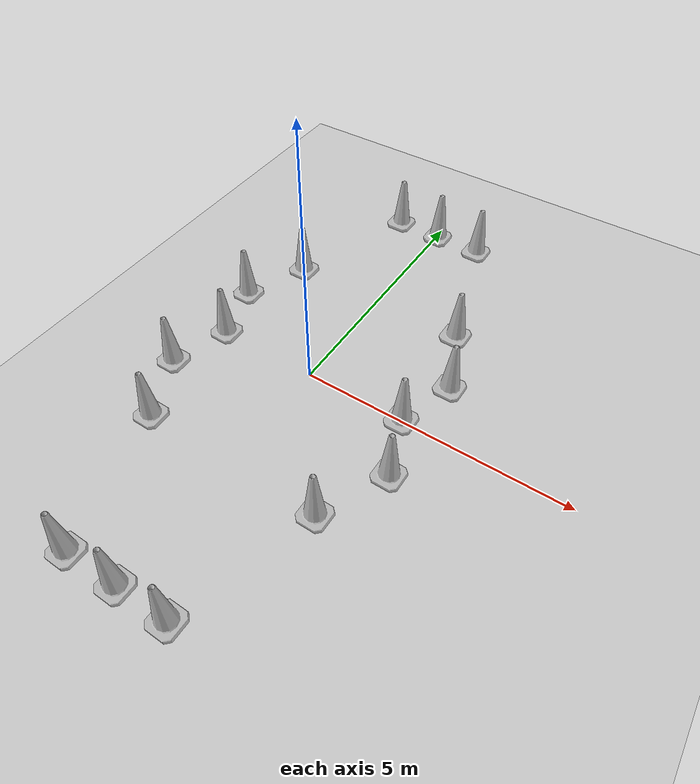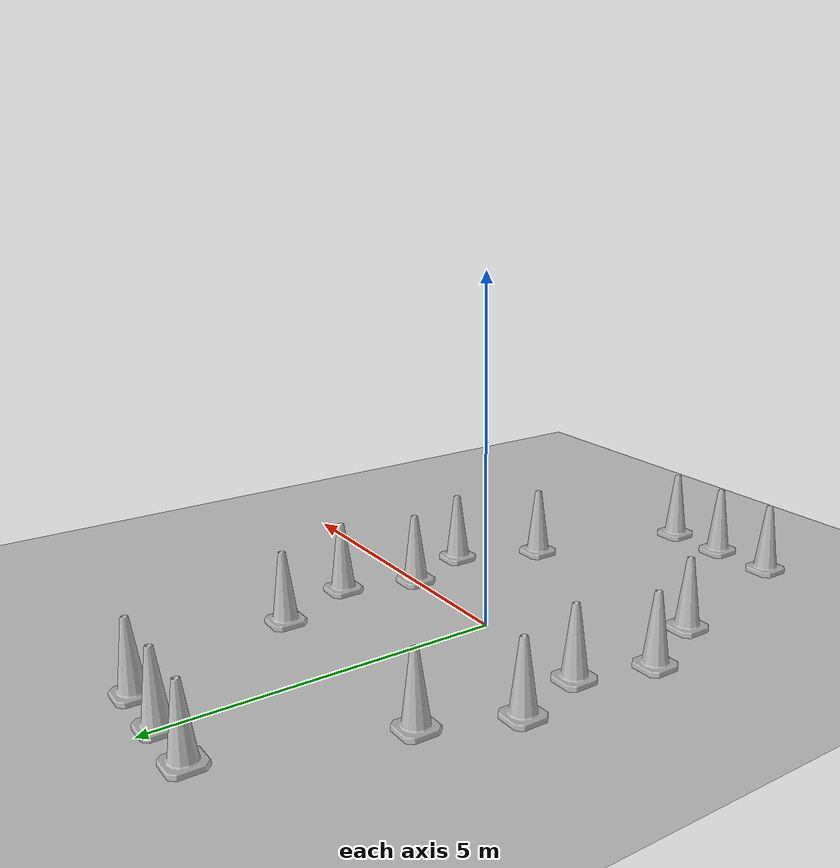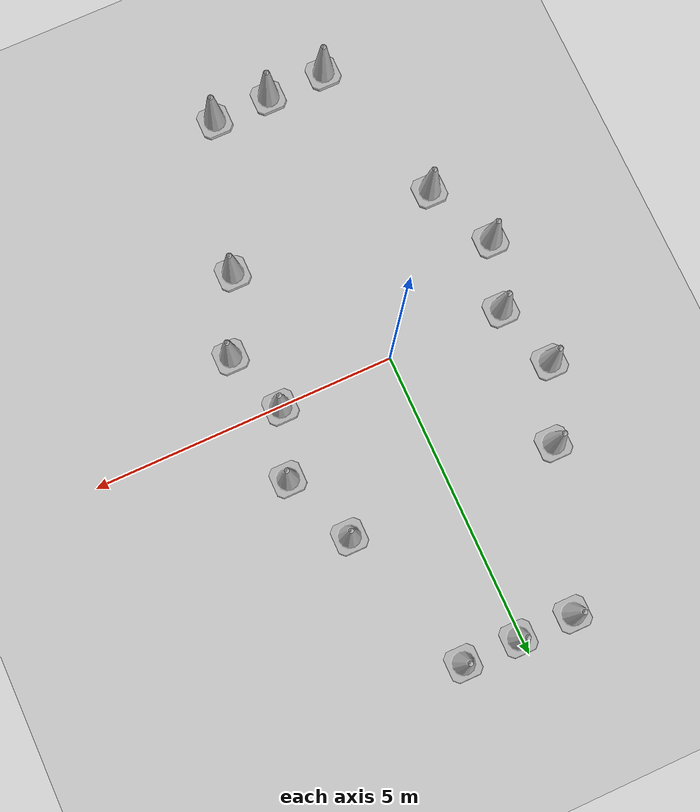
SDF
<sdf version="1.7">
 <world name="default">
  <light name="sun" type="directional">
   <pose>0 0 10 0 -0 0</pose>
   <diffuse>0.8 0.8 0.8 1</diffuse>
   <specular>0.2 0.2 0.2 1</specular>
   <attenuation>
    <range>1000</range>
    <constant>0.9</constant>
    <linear>0.01</linear>
    <quadratic>0.001</quadratic>
   </attenuation>
   <direction>-0.5 0.1 -0.9</direction>
   <spot><inner_angle>0</inner_angle><outer_angle>0</outer_angle><falloff>0</falloff></spot>
  </light>
  <model name="ground_plane">
   <static>1</static>
   <link name="link">
    <collision name="collision">
     <geometry><plane><normal>0 0 1</normal><size>100 100</size></plane></geometry>
     <surface>
      <contact><collide_bitmask>65535</collide_bitmask></contact>
      <friction><ode><mu>100</mu><mu2>50</mu2></ode></friction>
     </surface>
    </collision>
    <visual name="visual">
     <cast_shadows>0</cast_shadows>
     <geometry><plane><normal>0 0 1</normal><size>100 100</size></plane></geometry>
     <material>
      <script><uri>file://media/materials/scripts/gazebo.material</uri><name>Gazebo/Grey</name></script>
     </material>
    </visual>
   </link>
  </model>
  <gravity>0 0 -9.8</gravity>
  <magnetic_field>6e-06 2.3e-05 -4.2e-05</magnetic_field>
  <atmosphere type="adiabatic"/>
  <physics type="ode">
   <max_step_size>0.001</max_step_size>
   <real_time_factor>1</real_time_factor>
   <real_time_update_rate>1000</real_time_update_rate>
  </physics>
  <scene><ambient>0.4 0.4 0.4 1</ambient><background>0.7 0.7 0.7 1</background><shadows>1</shadows></scene>
  <audio><device>default</device></audio>
  <spherical_coordinates>
   <surface_model>EARTH_WGS84</surface_model>
   <latitude_deg>0</latitude_deg>
   <longitude_deg>0</longitude_deg>
   <elevation>0</elevation>
   <heading_deg>0</heading_deg>
  </spherical_coordinates>
  <model name="Construction Cone">
   <link name="link">
    <collision name="collision">
     <geometry>
      <mesh><scale>10 10 10</scale><uri>model://construction_cone/meshes/construction_cone.dae</uri></mesh>
     </geometry>
    </collision>
    <visual name="visual">
     <geometry>
      <mesh><scale>10 10 10</scale><uri>model://construction_cone/meshes/construction_cone.dae</uri></mesh>
     </geometry>
    </visual>
    <inertial>
     <inertia><ixx>1</ixx><ixy>0</ixy><ixz>0</ixz><iyy>1</iyy><iyz>0</iyz><izz>1</izz></inertia>
     <mass>1</mass>
    </inertial>
   </link>
   <pose>-1.92457 -0.000321 -0 0 -1e-06 0</pose>
  </model>
  <model name="Construction Cone_0">
   <link name="link">
    <collision name="collision">
     <geometry>
      <mesh><scale>10 10 10</scale><uri>model://construction_cone/meshes/construction_cone.dae</uri></mesh>
     </geometry>
    </collision>
    <visual name="visual">
     <geometry>
      <mesh><scale>10 10 10</scale><uri>model://construction_cone/meshes/construction_cone.dae</uri></mesh>
     </geometry>
    </visual>
    <inertial>
     <inertia><ixx>1</ixx><ixy>0</ixy><ixz>0</ixz><iyy>1</iyy><iyz>0</iyz><izz>1</izz></inertia>
     <mass>1</mass>
    </inertial>
   </link>
   <pose>-1.72631 -2.24327 -0 0 -0 0</pose>
  </model>
  <model name="Construction Cone_1">
   <link name="link">
    <collision name="collision">
     <geometry>
      <mesh><scale>10 10 10</scale><uri>model://construction_cone/meshes/construction_cone.dae</uri></mesh>
     </geometry>
    </collision>
    <visual name="visual">
     <geometry>
      <mesh><scale>10 10 10</scale><uri>model://construction_cone/meshes/construction_cone.dae</uri></mesh>
     </geometry>
    </visual>
    <inertial>
     <inertia><ixx>1</ixx><ixy>0</ixy><ixz>0</ixz><iyy>1</iyy><iyz>0</iyz><izz>1</izz></inertia>
     <mass>1</mass>
    </inertial>
   </link>
   <pose>-1.74568 2.26427 -0 0 -1e-06 0</pose>
  </model>
  <model name="Construction Cone_2">
   <link name="link">
    <collision name="collision">
     <geometry>
      <mesh><scale>10 10 10</scale><uri>model://construction_cone/meshes/construction_cone.dae</uri></mesh>
     </geometry>
    </collision>
    <visual name="visual">
     <geometry>
      <mesh><scale>10 10 10</scale><uri>model://construction_cone/meshes/construction_cone.dae</uri></mesh>
     </geometry>
    </visual>
    <inertial>
     <inertia><ixx>1</ixx><ixy>0</ixy><ixz>0</ixz><iyy>1</iyy><iyz>0</iyz><izz>1</izz></inertia>
     <mass>1</mass>
    </inertial>
   </link>
   <pose>1.8924 0.00456 -0 0 -0 0</pose>
  </model>
  <model name="Construction Cone_3">
   <link name="link">
    <collision name="collision">
     <geometry>
      <mesh><scale>10 10 10</scale><uri>model://construction_cone/meshes/construction_cone.dae</uri></mesh>
     </geometry>
    </collision>
    <visual name="visual">
     <geometry>
      <mesh><scale>10 10 10</scale><uri>model://construction_cone/meshes/construction_cone.dae</uri></mesh>
     </geometry>
    </visual>
    <inertial>
     <inertia><ixx>1</ixx><ixy>0</ixy><ixz>0</ixz><iyy>1</iyy><iyz>0</iyz><izz>1</izz></inertia>
     <mass>1</mass>
    </inertial>
   </link>
   <pose>1.74227 2.27975 -0 0 -1e-06 0</pose>
  </model>
  <model name="Construction Cone_4">
   <link name="link">
    <collision name="collision">
     <geometry>
      <mesh><scale>10 10 10</scale><uri>model://construction_cone/meshes/construction_cone.dae</uri></mesh>
     </geometry>
    </collision>
    <visual name="visual">
     <geometry>
      <mesh><scale>10 10 10</scale><uri>model://construction_cone/meshes/construction_cone.dae</uri></mesh>
     </geometry>
    </visual>
    <inertial>
     <inertia><ixx>1</ixx><ixy>0</ixy><ixz>0</ixz><iyy>1</iyy><iyz>0</iyz><izz>1</izz></inertia>
     <mass>1</mass>
    </inertial>
   </link>
   <pose>1.71009 -2.27728 -0 0 -0 0</pose>
  </model>
  <model name="Construction Cone_5">
   <link name="link">
    <collision name="collision">
     <geometry>
      <mesh><scale>10 10 10</scale><uri>model://construction_cone/meshes/construction_cone.dae</uri></mesh>
     </geometry>
    </collision>
    <visual name="visual">
     <geometry>
      <mesh><scale>10 10 10</scale><uri>model://construction_cone/meshes/construction_cone.dae</uri></mesh>
     </geometry>
    </visual>
    <inertial>
     <inertia><ixx>1</ixx><ixy>0</ixy><ixz>0</ixz><iyy>1</iyy><iyz>0</iyz><izz>1</izz></inertia>
     <mass>1</mass>
    </inertial>
   </link>
   <pose>-2.26709 -1.09469 -0 0 -1e-06 0</pose>
  </model>
  <model name="Construction Cone_6">
   <link name="link">
    <collision name="collision">
     <geometry>
      <mesh><scale>10 10 10</scale><uri>model://construction_cone/meshes/construction_cone.dae</uri></mesh>
     </geometry>
    </collision>
    <visual name="visual">
     <geometry>
      <mesh><scale>10 10 10</scale><uri>model://construction_cone/meshes/construction_cone.dae</uri></mesh>
     </geometry>
    </visual>
    <inertial>
     <inertia><ixx>1</ixx><ixy>0</ixy><ixz>0</ixz><iyy>1</iyy><iyz>0</iyz><izz>1</izz></inertia>
     <mass>1</mass>
    </inertial>
   </link>
   <pose>-2.25639 1.07715 -0 0 -1e-06 0</pose>
  </model>
  <model name="Construction Cone_7">
   <link name="link">
    <collision name="collision">
     <geometry>
      <mesh><scale>10 10 10</scale><uri>model://construction_cone/meshes/construction_cone.dae</uri></mesh>
     </geometry>
    </collision>
    <visual name="visual">
     <geometry>
      <mesh><scale>10 10 10</scale><uri>model://construction_cone/meshes/construction_cone.dae</uri></mesh>
     </geometry>
    </visual>
    <inertial>
     <inertia><ixx>1</ixx><ixy>0</ixy><ixz>0</ixz><iyy>1</iyy><iyz>0</iyz><izz>1</izz></inertia>
     <mass>1</mass>
    </inertial>
   </link>
   <pose>2.24573 1.0854 -0 0 -1e-06 0</pose>
  </model>
  <model name="Construction Cone_8">
   <link name="link">
    <collision name="collision">
     <geometry>
      <mesh><scale>10 10 10</scale><uri>model://construction_cone/meshes/construction_cone.dae</uri></mesh>
     </geometry>
    </collision>
    <visual name="visual">
     <geometry>
      <mesh><scale>10 10 10</scale><uri>model://construction_cone/meshes/construction_cone.dae</uri></mesh>
     </geometry>
    </visual>
    <inertial>
     <inertia><ixx>1</ixx><ixy>0</ixy><ixz>0</ixz><iyy>1</iyy><iyz>0</iyz><izz>1</izz></inertia>
     <mass>1</mass>
    </inertial>
   </link>
   <pose>2.28272 -1.05124 -0 0 -0 0</pose>
  </model>
  <model name="Construction Cone_9">
   <link name="link">
    <collision name="collision">
     <geometry>
      <mesh><scale>10 10 10</scale><uri>model://construction_cone/meshes/construction_cone.dae</uri></mesh>
     </geometry>
    </collision>
    <visual name="visual">
     <geometry>
      <mesh><scale>10 10 10</scale><uri>model://construction_cone/meshes/construction_cone.dae</uri></mesh>
     </geometry>
    </visual>
    <inertial>
     <inertia><ixx>1</ixx><ixy>0</ixy><ixz>0</ixz><iyy>1</iyy><iyz>0</iyz><izz>1</izz></inertia>
     <mass>1</mass>
    </inertial>
   </link>
   <pose>-0.864559 4.73511 -0 0 -1e-06 0</pose>
  </model>
  <model name="Construction Cone_10">
   <link name="link">
    <collision name="collision">
     <geometry>
      <mesh><scale>10 10 10</scale><uri>model://construction_cone/meshes/construction_cone.dae</uri></mesh>
     </geometry>
    </collision>
    <visual name="visual">
     <geometry>
      <mesh><scale>10 10 10</scale><uri>model://construction_cone/meshes/construction_cone.dae</uri></mesh>
     </geometry>
    </visual>
    <inertial>
     <inertia><ixx>1</ixx><ixy>0</ixy><ixz>0</ixz><iyy>1</iyy><iyz>0</iyz><izz>1</izz></inertia>
     <mass>1</mass>
    </inertial>
   </link>
   <pose>0.04579 4.7253 -0 0 -0 0</pose>
  </model>
  <model name="Construction Cone_11">
   <link name="link">
    <collision name="collision">
     <geometry>
      <mesh><scale>10 10 10</scale><uri>model://construction_cone/meshes/construction_cone.dae</uri></mesh>
     </geometry>
    </collision>
    <visual name="visual">
     <geometry>
      <mesh><scale>10 10 10</scale><uri>model://construction_cone/meshes/construction_cone.dae</uri></mesh>
     </geometry>
    </visual>
    <inertial>
     <inertia><ixx>1</ixx><ixy>0</ixy><ixz>0</ixz><iyy>1</iyy><iyz>0</iyz><izz>1</izz></inertia>
     <mass>1</mass>
    </inertial>
   </link>
   <pose>0.964632 4.71757 -0 0 -1e-06 0</pose>
  </model>
  <model name="Construction Cone_12">
   <link name="link">
    <collision name="collision">
     <geometry>
      <mesh><scale>10 10 10</scale><uri>model://construction_cone/meshes/construction_cone.dae</uri></mesh>
     </geometry>
    </collision>
    <visual name="visual">
     <geometry>
      <mesh><scale>10 10 10</scale><uri>model://construction_cone/meshes/construction_cone.dae</uri></mesh>
     </geometry>
    </visual>
    <inertial>
     <inertia><ixx>1</ixx><ixy>0</ixy><ixz>0</ixz><iyy>1</iyy><iyz>0</iyz><izz>1</izz></inertia>
     <mass>1</mass>
    </inertial>
   </link>
   <pose>-0.001306 -4.75595 -0 0 -0 0</pose>
  </model>
  <model name="Construction Cone_13">
   <link name="link">
    <collision name="collision">
     <geometry>
      <mesh><scale>10 10 10</scale><uri>model://construction_cone/meshes/construction_cone.dae</uri></mesh>
     </geometry>
    </collision>
    <visual name="visual">
     <geometry>
      <mesh><scale>10 10 10</scale><uri>model://construction_cone/meshes/construction_cone.dae</uri></mesh>
     </geometry>
    </visual>
    <inertial>
     <inertia><ixx>1</ixx><ixy>0</ixy><ixz>0</ixz><iyy>1</iyy><iyz>0</iyz><izz>1</izz></inertia>
     <mass>1</mass>
    </inertial>
   </link>
   <pose>-0.990293 -4.77683 -0 0 -1e-06 0</pose>
  </model>
  <model name="Construction Cone_14">
   <link name="link">
    <collision name="collision">
     <geometry>
      <mesh><scale>10 10 10</scale><uri>model://construction_cone/meshes/construction_cone.dae</uri></mesh>
     </geometry>
    </collision>
    <visual name="visual">
     <geometry>
      <mesh><scale>10 10 10</scale><uri>model://construction_cone/meshes/construction_cone.dae</uri></mesh>
     </geometry>
    </visual>
    <inertial>
     <inertia><ixx>1</ixx><ixy>0</ixy><ixz>0</ixz><iyy>1</iyy><iyz>0</iyz><izz>1</izz></inertia>
     <mass>1</mass>
    </inertial>
   </link>
   <pose>0.958066 -4.73441 -0 0 -0 0</pose>
  </model>
  <light name="user_point_light_0" type="point">
   <pose>0.056875 0.000545 1 0 -0 0</pose>
   <diffuse>0.5 0.5 0.5 1</diffuse>
   <specular>0.1 0.1 0.1 1</specular>
   <attenuation>
    <range>20</range>
    <constant>0.5</constant>
    <linear>0.01</linear>
    <quadratic>0.001</quadratic>
   </attenuation>
   <cast_shadows>0</cast_shadows>
   <direction>0 0 -1</direction>
   <spot><inner_angle>0</inner_angle><outer_angle>0</outer_angle><falloff>0</falloff></spot>
  </light>
 </world>
</sdf>
